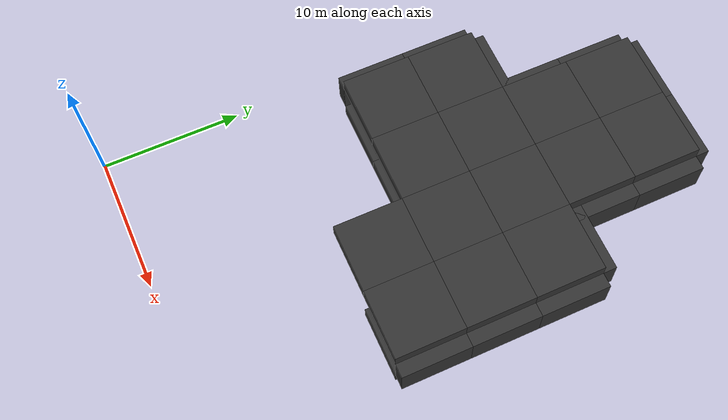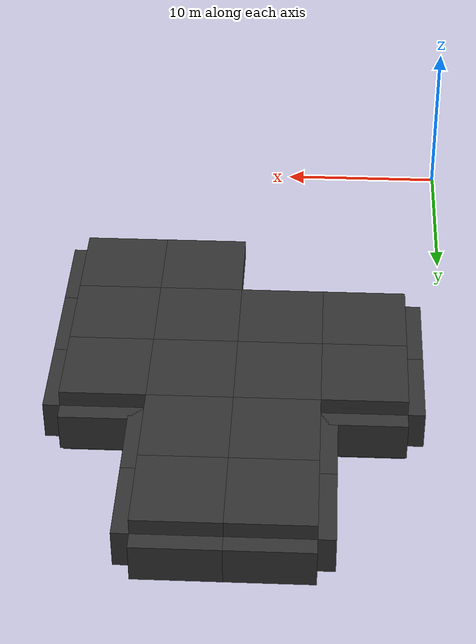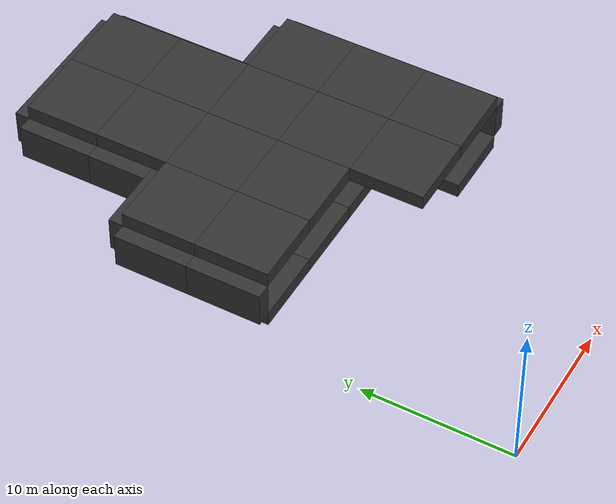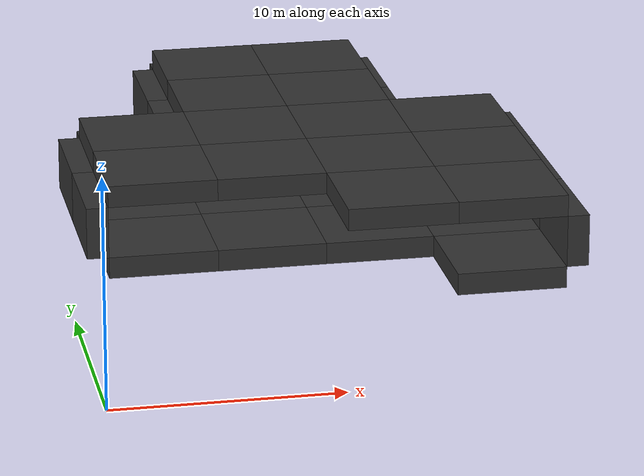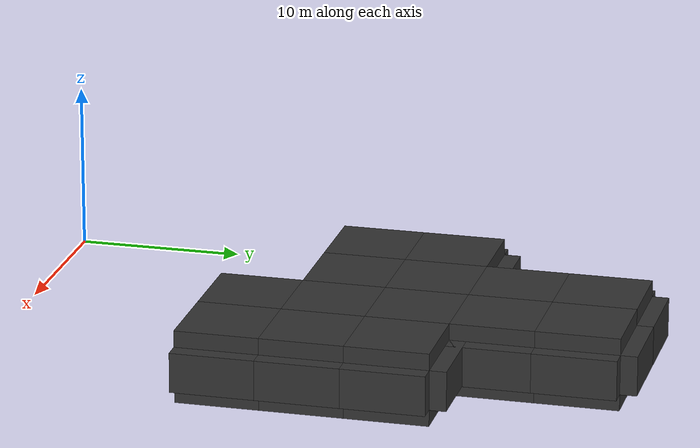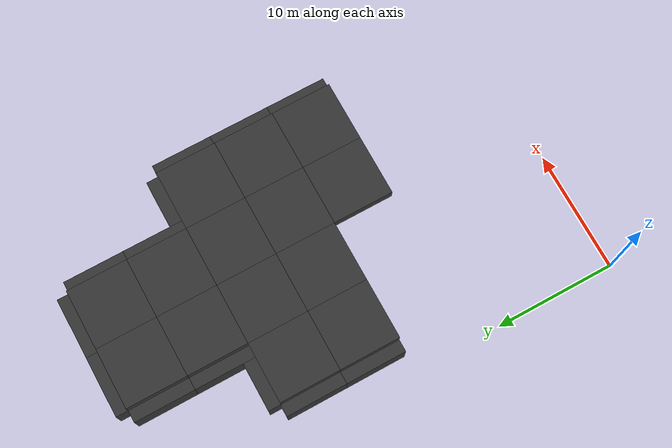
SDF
<sdf version="1.7">
 <world name="RG1">
  <model name="floor_8">
   <static>true</static>
   <pose>5.0 20.0 -0.5 0.0 0.0 0.0</pose>
   <link name="floor_8-base-link">
    <visual name="floor_8-visual">
     <geometry><box><size>5 5 1.0</size></box></geometry>
     <material><diffuse>0.2 0.2 0.2 1</diffuse><specular>0.1 0.1 0.1 1</specular></material>
    </visual>
    <collision name="floor_8-collision"><geometry><box><size>5 5 1.0</size></box></geometry></collision>
   </link>
  </model>
  <model name="ceiling_8">
   <static>true</static>
   <pose>5.0 20.0 2.9 0.0 0.0 0.0</pose>
   <link name="ceiling_8-base-link">
    <visual name="ceiling_8-visual">
     <geometry><box><size>5 5 1.0</size></box></geometry>
     <material><diffuse>0.2 0.2 0.2 1</diffuse><specular>0.1 0.1 0.1 1</specular></material>
    </visual>
    <collision name="ceiling_8-collision"><geometry><box><size>5 5 1.0</size></box></geometry></collision>
    <light type="point" name="ceiling_8-light">
     <pose>0 0 -1 0 0 0</pose>
     <cast_shadows>false</cast_shadows>
     <diffuse>0.8 0.8 0.8 1</diffuse>
     <attenuation>
      <range>10</range>
      <constant>0.8</constant>
      <linear>0.05</linear>
      <quadratic>0.01</quadratic>
     </attenuation>
    </light>
   </link>
  </model>
  <model name="wall_8">
   <static>true</static>
   <pose>2.0 20.0 1.2 0.0 0.0 1.570796326795</pose>
   <link name="wall_8-base-link">
    <visual name="wall_8-visual">
     <geometry><box><size>5 1 2.4</size></box></geometry>
     <material><diffuse>0.2 0.2 0.2 1</diffuse><specular>0.1 0.1 0.1 1</specular></material>
    </visual>
    <collision name="wall_8-collision"><geometry><box><size>5 1 2.4</size></box></geometry></collision>
   </link>
  </model>
  <model name="floor_9">
   <static>true</static>
   <pose>5.0 25.0 -0.5 0.0 0.0 0.0</pose>
   <link name="floor_9-base-link">
    <visual name="floor_9-visual">
     <geometry><box><size>5 5 1.0</size></box></geometry>
     <material><diffuse>0.2 0.2 0.2 1</diffuse><specular>0.1 0.1 0.1 1</specular></material>
    </visual>
    <collision name="floor_9-collision"><geometry><box><size>5 5 1.0</size></box></geometry></collision>
   </link>
  </model>
  <model name="ceiling_9">
   <static>true</static>
   <pose>5.0 25.0 2.9 0.0 0.0 0.0</pose>
   <link name="ceiling_9-base-link">
    <visual name="ceiling_9-visual">
     <geometry><box><size>5 5 1.0</size></box></geometry>
     <material><diffuse>0.2 0.2 0.2 1</diffuse><specular>0.1 0.1 0.1 1</specular></material>
    </visual>
    <collision name="ceiling_9-collision"><geometry><box><size>5 5 1.0</size></box></geometry></collision>
    <light type="point" name="ceiling_9-light">
     <pose>0 0 -1 0 0 0</pose>
     <cast_shadows>false</cast_shadows>
     <diffuse>0.8 0.8 0.8 1</diffuse>
     <attenuation>
      <range>10</range>
      <constant>0.8</constant>
      <linear>0.05</linear>
      <quadratic>0.01</quadratic>
     </attenuation>
    </light>
   </link>
  </model>
  <model name="wall_9">
   <static>true</static>
   <pose>2.0 25.0 1.2 0.0 0.0 1.570796326795</pose>
   <link name="wall_9-base-link">
    <visual name="wall_9-visual">
     <geometry><box><size>5 1 2.4</size></box></geometry>
     <material><diffuse>0.2 0.2 0.2 1</diffuse><specular>0.1 0.1 0.1 1</specular></material>
    </visual>
    <collision name="wall_9-collision"><geometry><box><size>5 1 2.4</size></box></geometry></collision>
   </link>
  </model>
  <model name="wall_10">
   <static>true</static>
   <pose>5.0 28.0 1.2 0.0 0.0 0.0</pose>
   <link name="wall_10-base-link">
    <visual name="wall_10-visual">
     <geometry><box><size>5 1 2.4</size></box></geometry>
     <material><diffuse>0.2 0.2 0.2 1</diffuse><specular>0.1 0.1 0.1 1</specular></material>
    </visual>
    <collision name="wall_10-collision"><geometry><box><size>5 1 2.4</size></box></geometry></collision>
   </link>
  </model>
  <model name="floor_14">
   <static>true</static>
   <pose>10.0 20.0 -0.5 0.0 0.0 0.0</pose>
   <link name="floor_14-base-link">
    <visual name="floor_14-visual">
     <geometry><box><size>5 5 1.0</size></box></geometry>
     <material><diffuse>0.2 0.2 0.2 1</diffuse><specular>0.1 0.1 0.1 1</specular></material>
    </visual>
    <collision name="floor_14-collision"><geometry><box><size>5 5 1.0</size></box></geometry></collision>
   </link>
  </model>
  <model name="ceiling_14">
   <static>true</static>
   <pose>10.0 20.0 2.9 0.0 0.0 0.0</pose>
   <link name="ceiling_14-base-link">
    <visual name="ceiling_14-visual">
     <geometry><box><size>5 5 1.0</size></box></geometry>
     <material><diffuse>0.2 0.2 0.2 1</diffuse><specular>0.1 0.1 0.1 1</specular></material>
    </visual>
    <collision name="ceiling_14-collision"><geometry><box><size>5 5 1.0</size></box></geometry></collision>
    <light type="point" name="ceiling_14-light">
     <pose>0 0 -1 0 0 0</pose>
     <cast_shadows>false</cast_shadows>
     <diffuse>0.8 0.8 0.8 1</diffuse>
     <attenuation>
      <range>10</range>
      <constant>0.8</constant>
      <linear>0.05</linear>
      <quadratic>0.01</quadratic>
     </attenuation>
    </light>
   </link>
  </model>
  <model name="floor_15">
   <static>true</static>
   <pose>10.0 25.0 -0.5 0.0 0.0 0.0</pose>
   <link name="floor_15-base-link">
    <visual name="floor_15-visual">
     <geometry><box><size>5 5 1.0</size></box></geometry>
     <material><diffuse>0.2 0.2 0.2 1</diffuse><specular>0.1 0.1 0.1 1</specular></material>
    </visual>
    <collision name="floor_15-collision"><geometry><box><size>5 5 1.0</size></box></geometry></collision>
   </link>
  </model>
  <model name="ceiling_15">
   <static>true</static>
   <pose>10.0 25.0 2.9 0.0 0.0 0.0</pose>
   <link name="ceiling_15-base-link">
    <visual name="ceiling_15-visual">
     <geometry><box><size>5 5 1.0</size></box></geometry>
     <material><diffuse>0.2 0.2 0.2 1</diffuse><specular>0.1 0.1 0.1 1</specular></material>
    </visual>
    <collision name="ceiling_15-collision"><geometry><box><size>5 5 1.0</size></box></geometry></collision>
    <light type="point" name="ceiling_15-light">
     <pose>0 0 -1 0 0 0</pose>
     <cast_shadows>false</cast_shadows>
     <diffuse>0.8 0.8 0.8 1</diffuse>
     <attenuation>
      <range>10</range>
      <constant>0.8</constant>
      <linear>0.05</linear>
      <quadratic>0.01</quadratic>
     </attenuation>
    </light>
   </link>
  </model>
  <model name="floor_16">
   <static>true</static>
   <pose>10.0 30.0 -0.5 0.0 0.0 0.0</pose>
   <link name="floor_16-base-link">
    <visual name="floor_16-visual">
     <geometry><box><size>5 5 1.0</size></box></geometry>
     <material><diffuse>0.2 0.2 0.2 1</diffuse><specular>0.1 0.1 0.1 1</specular></material>
    </visual>
    <collision name="floor_16-collision"><geometry><box><size>5 5 1.0</size></box></geometry></collision>
   </link>
  </model>
  <model name="ceiling_16">
   <static>true</static>
   <pose>10.0 30.0 2.9 0.0 0.0 0.0</pose>
   <link name="ceiling_16-base-link">
    <visual name="ceiling_16-visual">
     <geometry><box><size>5 5 1.0</size></box></geometry>
     <material><diffuse>0.2 0.2 0.2 1</diffuse><specular>0.1 0.1 0.1 1</specular></material>
    </visual>
    <collision name="ceiling_16-collision"><geometry><box><size>5 5 1.0</size></box></geometry></collision>
    <light type="point" name="ceiling_16-light">
     <pose>0 0 -1 0 0 0</pose>
     <cast_shadows>false</cast_shadows>
     <diffuse>0.8 0.8 0.8 1</diffuse>
     <attenuation>
      <range>10</range>
      <constant>0.8</constant>
      <linear>0.05</linear>
      <quadratic>0.01</quadratic>
     </attenuation>
    </light>
   </link>
  </model>
  <model name="wall_14">
   <static>true</static>
   <pose>7.0 30.0 1.2 0.0 0.0 1.570796326795</pose>
   <link name="wall_14-base-link">
    <visual name="wall_14-visual">
     <geometry><box><size>5 1 2.4</size></box></geometry>
     <material><diffuse>0.2 0.2 0.2 1</diffuse><specular>0.1 0.1 0.1 1</specular></material>
    </visual>
    <collision name="wall_14-collision"><geometry><box><size>5 1 2.4</size></box></geometry></collision>
   </link>
  </model>
  <model name="floor_17">
   <static>true</static>
   <pose>10.0 35.0 -0.5 0.0 0.0 0.0</pose>
   <link name="floor_17-base-link">
    <visual name="floor_17-visual">
     <geometry><box><size>5 5 1.0</size></box></geometry>
     <material><diffuse>0.2 0.2 0.2 1</diffuse><specular>0.1 0.1 0.1 1</specular></material>
    </visual>
    <collision name="floor_17-collision"><geometry><box><size>5 5 1.0</size></box></geometry></collision>
   </link>
  </model>
  <model name="ceiling_17">
   <static>true</static>
   <pose>10.0 35.0 2.9 0.0 0.0 0.0</pose>
   <link name="ceiling_17-base-link">
    <visual name="ceiling_17-visual">
     <geometry><box><size>5 5 1.0</size></box></geometry>
     <material><diffuse>0.2 0.2 0.2 1</diffuse><specular>0.1 0.1 0.1 1</specular></material>
    </visual>
    <collision name="ceiling_17-collision"><geometry><box><size>5 5 1.0</size></box></geometry></collision>
    <light type="point" name="ceiling_17-light">
     <pose>0 0 -1 0 0 0</pose>
     <cast_shadows>false</cast_shadows>
     <diffuse>0.8 0.8 0.8 1</diffuse>
     <attenuation>
      <range>10</range>
      <constant>0.8</constant>
      <linear>0.05</linear>
      <quadratic>0.01</quadratic>
     </attenuation>
    </light>
   </link>
  </model>
  <model name="wall_15">
   <static>true</static>
   <pose>7.0 35.0 1.2 0.0 0.0 1.570796326795</pose>
   <link name="wall_15-base-link">
    <visual name="wall_15-visual">
     <geometry><box><size>5 1 2.4</size></box></geometry>
     <material><diffuse>0.2 0.2 0.2 1</diffuse><specular>0.1 0.1 0.1 1</specular></material>
    </visual>
    <collision name="wall_15-collision"><geometry><box><size>5 1 2.4</size></box></geometry></collision>
   </link>
  </model>
  <model name="wall_16">
   <static>true</static>
   <pose>10.0 38.0 1.2 0.0 0.0 0.0</pose>
   <link name="wall_16-base-link">
    <visual name="wall_16-visual">
     <geometry><box><size>5 1 2.4</size></box></geometry>
     <material><diffuse>0.2 0.2 0.2 1</diffuse><specular>0.1 0.1 0.1 1</specular></material>
    </visual>
    <collision name="wall_16-collision"><geometry><box><size>5 1 2.4</size></box></geometry></collision>
   </link>
  </model>
  <model name="ceiling_19">
   <static>true</static>
   <pose>15.0 15.0 2.9 0.0 0.0 0.0</pose>
   <link name="ceiling_19-base-link">
    <visual name="ceiling_19-visual">
     <geometry><box><size>5 5 1.0</size></box></geometry>
     <material><diffuse>0.2 0.2 0.2 1</diffuse><specular>0.1 0.1 0.1 1</specular></material>
    </visual>
    <collision name="ceiling_19-collision"><geometry><box><size>5 5 1.0</size></box></geometry></collision>
    <light type="point" name="ceiling_19-light">
     <pose>0 0 -1 0 0 0</pose>
     <cast_shadows>false</cast_shadows>
     <diffuse>0.8 0.8 0.8 1</diffuse>
     <attenuation>
      <range>10</range>
      <constant>0.8</constant>
      <linear>0.05</linear>
      <quadratic>0.01</quadratic>
     </attenuation>
    </light>
   </link>
  </model>
  <model name="floor_20">
   <static>true</static>
   <pose>15.0 20.0 -0.5 0.0 0.0 0.0</pose>
   <link name="floor_20-base-link">
    <visual name="floor_20-visual">
     <geometry><box><size>5 5 1.0</size></box></geometry>
     <material><diffuse>0.2 0.2 0.2 1</diffuse><specular>0.1 0.1 0.1 1</specular></material>
    </visual>
    <collision name="floor_20-collision"><geometry><box><size>5 5 1.0</size></box></geometry></collision>
   </link>
  </model>
  <model name="ceiling_20">
   <static>true</static>
   <pose>15.0 20.0 2.9 0.0 0.0 0.0</pose>
   <link name="ceiling_20-base-link">
    <visual name="ceiling_20-visual">
     <geometry><box><size>5 5 1.0</size></box></geometry>
     <material><diffuse>0.2 0.2 0.2 1</diffuse><specular>0.1 0.1 0.1 1</specular></material>
    </visual>
    <collision name="ceiling_20-collision"><geometry><box><size>5 5 1.0</size></box></geometry></collision>
    <light type="point" name="ceiling_20-light">
     <pose>0 0 -1 0 0 0</pose>
     <cast_shadows>false</cast_shadows>
     <diffuse>0.8 0.8 0.8 1</diffuse>
     <attenuation>
      <range>10</range>
      <constant>0.8</constant>
      <linear>0.05</linear>
      <quadratic>0.01</quadratic>
     </attenuation>
    </light>
   </link>
  </model>
  <model name="floor_21">
   <static>true</static>
   <pose>15.0 25.0 -0.5 0.0 0.0 0.0</pose>
   <link name="floor_21-base-link">
    <visual name="floor_21-visual">
     <geometry><box><size>5 5 1.0</size></box></geometry>
     <material><diffuse>0.2 0.2 0.2 1</diffuse><specular>0.1 0.1 0.1 1</specular></material>
    </visual>
    <collision name="floor_21-collision"><geometry><box><size>5 5 1.0</size></box></geometry></collision>
   </link>
  </model>
  <model name="ceiling_21">
   <static>true</static>
   <pose>15.0 25.0 2.9 0.0 0.0 0.0</pose>
   <link name="ceiling_21-base-link">
    <visual name="ceiling_21-visual">
     <geometry><box><size>5 5 1.0</size></box></geometry>
     <material><diffuse>0.2 0.2 0.2 1</diffuse><specular>0.1 0.1 0.1 1</specular></material>
    </visual>
    <collision name="ceiling_21-collision"><geometry><box><size>5 5 1.0</size></box></geometry></collision>
    <light type="point" name="ceiling_21-light">
     <pose>0 0 -1 0 0 0</pose>
     <cast_shadows>false</cast_shadows>
     <diffuse>0.8 0.8 0.8 1</diffuse>
     <attenuation>
      <range>10</range>
      <constant>0.8</constant>
      <linear>0.05</linear>
      <quadratic>0.01</quadratic>
     </attenuation>
    </light>
   </link>
  </model>
  <model name="floor_22">
   <static>true</static>
   <pose>15.0 30.0 -0.5 0.0 0.0 0.0</pose>
   <link name="floor_22-base-link">
    <visual name="floor_22-visual">
     <geometry><box><size>5 5 1.0</size></box></geometry>
     <material><diffuse>0.2 0.2 0.2 1</diffuse><specular>0.1 0.1 0.1 1</specular></material>
    </visual>
    <collision name="floor_22-collision"><geometry><box><size>5 5 1.0</size></box></geometry></collision>
   </link>
  </model>
  <model name="ceiling_22">
   <static>true</static>
   <pose>15.0 30.0 2.9 0.0 0.0 0.0</pose>
   <link name="ceiling_22-base-link">
    <visual name="ceiling_22-visual">
     <geometry><box><size>5 5 1.0</size></box></geometry>
     <material><diffuse>0.2 0.2 0.2 1</diffuse><specular>0.1 0.1 0.1 1</specular></material>
    </visual>
    <collision name="ceiling_22-collision"><geometry><box><size>5 5 1.0</size></box></geometry></collision>
    <light type="point" name="ceiling_22-light">
     <pose>0 0 -1 0 0 0</pose>
     <cast_shadows>false</cast_shadows>
     <diffuse>0.8 0.8 0.8 1</diffuse>
     <attenuation>
      <range>10</range>
      <constant>0.8</constant>
      <linear>0.05</linear>
      <quadratic>0.01</quadratic>
     </attenuation>
    </light>
   </link>
  </model>
  <model name="wall_18">
   <static>true</static>
   <pose>18.0 30.0 1.2 0.0 0.0 1.570796326795</pose>
   <link name="wall_18-base-link">
    <visual name="wall_18-visual">
     <geometry><box><size>5 1 2.4</size></box></geometry>
     <material><diffuse>0.2 0.2 0.2 1</diffuse><specular>0.1 0.1 0.1 1</specular></material>
    </visual>
    <collision name="wall_18-collision"><geometry><box><size>5 1 2.4</size></box></geometry></collision>
   </link>
  </model>
  <model name="floor_23">
   <static>true</static>
   <pose>15.0 35.0 -0.5 0.0 0.0 0.0</pose>
   <link name="floor_23-base-link">
    <visual name="floor_23-visual">
     <geometry><box><size>5 5 1.0</size></box></geometry>
     <material><diffuse>0.2 0.2 0.2 1</diffuse><specular>0.1 0.1 0.1 1</specular></material>
    </visual>
    <collision name="floor_23-collision"><geometry><box><size>5 5 1.0</size></box></geometry></collision>
   </link>
  </model>
  <model name="ceiling_23">
   <static>true</static>
   <pose>15.0 35.0 2.9 0.0 0.0 0.0</pose>
   <link name="ceiling_23-base-link">
    <visual name="ceiling_23-visual">
     <geometry><box><size>5 5 1.0</size></box></geometry>
     <material><diffuse>0.2 0.2 0.2 1</diffuse><specular>0.1 0.1 0.1 1</specular></material>
    </visual>
    <collision name="ceiling_23-collision"><geometry><box><size>5 5 1.0</size></box></geometry></collision>
    <light type="point" name="ceiling_23-light">
     <pose>0 0 -1 0 0 0</pose>
     <cast_shadows>false</cast_shadows>
     <diffuse>0.8 0.8 0.8 1</diffuse>
     <attenuation>
      <range>10</range>
      <constant>0.8</constant>
      <linear>0.05</linear>
      <quadratic>0.01</quadratic>
     </attenuation>
    </light>
   </link>
  </model>
  <model name="wall_19">
   <static>true</static>
   <pose>18.0 35.0 1.2 0.0 0.0 1.570796326795</pose>
   <link name="wall_19-base-link">
    <visual name="wall_19-visual">
     <geometry><box><size>5 1 2.4</size></box></geometry>
     <material><diffuse>0.2 0.2 0.2 1</diffuse><specular>0.1 0.1 0.1 1</specular></material>
    </visual>
    <collision name="wall_19-collision"><geometry><box><size>5 1 2.4</size></box></geometry></collision>
   </link>
  </model>
  <model name="wall_20">
   <static>true</static>
   <pose>15.0 38.0 1.2 0.0 0.0 0.0</pose>
   <link name="wall_20-base-link">
    <visual name="wall_20-visual">
     <geometry><box><size>5 1 2.4</size></box></geometry>
     <material><diffuse>0.2 0.2 0.2 1</diffuse><specular>0.1 0.1 0.1 1</specular></material>
    </visual>
    <collision name="wall_20-collision"><geometry><box><size>5 1 2.4</size></box></geometry></collision>
   </link>
  </model>
  <model name="floor_25">
   <static>true</static>
   <pose>20.0 15.0 -0.5 0.0 0.0 0.0</pose>
   <link name="floor_25-base-link">
    <visual name="floor_25-visual">
     <geometry><box><size>5 5 1.0</size></box></geometry>
     <material><diffuse>0.2 0.2 0.2 1</diffuse><specular>0.1 0.1 0.1 1</specular></material>
    </visual>
    <collision name="floor_25-collision"><geometry><box><size>5 5 1.0</size></box></geometry></collision>
   </link>
  </model>
  <model name="ceiling_25">
   <static>true</static>
   <pose>20.0 15.0 2.9 0.0 0.0 0.0</pose>
   <link name="ceiling_25-base-link">
    <visual name="ceiling_25-visual">
     <geometry><box><size>5 5 1.0</size></box></geometry>
     <material><diffuse>0.2 0.2 0.2 1</diffuse><specular>0.1 0.1 0.1 1</specular></material>
    </visual>
    <collision name="ceiling_25-collision"><geometry><box><size>5 5 1.0</size></box></geometry></collision>
    <light type="point" name="ceiling_25-light">
     <pose>0 0 -1 0 0 0</pose>
     <cast_shadows>false</cast_shadows>
     <diffuse>0.8 0.8 0.8 1</diffuse>
     <attenuation>
      <range>10</range>
      <constant>0.8</constant>
      <linear>0.05</linear>
      <quadratic>0.01</quadratic>
     </attenuation>
    </light>
   </link>
  </model>
  <model name="wall_23">
   <static>true</static>
   <pose>23.0 15.0 1.2 0.0 0.0 1.570796326795</pose>
   <link name="wall_23-base-link">
    <visual name="wall_23-visual">
     <geometry><box><size>5 1 2.4</size></box></geometry>
     <material><diffuse>0.2 0.2 0.2 1</diffuse><specular>0.1 0.1 0.1 1</specular></material>
    </visual>
    <collision name="wall_23-collision"><geometry><box><size>5 1 2.4</size></box></geometry></collision>
   </link>
  </model>
  <model name="floor_26">
   <static>true</static>
   <pose>20.0 20.0 -0.5 0.0 0.0 0.0</pose>
   <link name="floor_26-base-link">
    <visual name="floor_26-visual">
     <geometry><box><size>5 5 1.0</size></box></geometry>
     <material><diffuse>0.2 0.2 0.2 1</diffuse><specular>0.1 0.1 0.1 1</specular></material>
    </visual>
    <collision name="floor_26-collision"><geometry><box><size>5 5 1.0</size></box></geometry></collision>
   </link>
  </model>
  <model name="ceiling_26">
   <static>true</static>
   <pose>20.0 20.0 2.9 0.0 0.0 0.0</pose>
   <link name="ceiling_26-base-link">
    <visual name="ceiling_26-visual">
     <geometry><box><size>5 5 1.0</size></box></geometry>
     <material><diffuse>0.2 0.2 0.2 1</diffuse><specular>0.1 0.1 0.1 1</specular></material>
    </visual>
    <collision name="ceiling_26-collision"><geometry><box><size>5 5 1.0</size></box></geometry></collision>
    <light type="point" name="ceiling_26-light">
     <pose>0 0 -1 0 0 0</pose>
     <cast_shadows>false</cast_shadows>
     <diffuse>0.8 0.8 0.8 1</diffuse>
     <attenuation>
      <range>10</range>
      <constant>0.8</constant>
      <linear>0.05</linear>
      <quadratic>0.01</quadratic>
     </attenuation>
    </light>
   </link>
  </model>
  <model name="wall_24">
   <static>true</static>
   <pose>23.0 20.0 1.2 0.0 0.0 1.570796326795</pose>
   <link name="wall_24-base-link">
    <visual name="wall_24-visual">
     <geometry><box><size>5 1 2.4</size></box></geometry>
     <material><diffuse>0.2 0.2 0.2 1</diffuse><specular>0.1 0.1 0.1 1</specular></material>
    </visual>
    <collision name="wall_24-collision"><geometry><box><size>5 1 2.4</size></box></geometry></collision>
   </link>
  </model>
  <model name="floor_27">
   <static>true</static>
   <pose>20.0 25.0 -0.5 0.0 0.0 0.0</pose>
   <link name="floor_27-base-link">
    <visual name="floor_27-visual">
     <geometry><box><size>5 5 1.0</size></box></geometry>
     <material><diffuse>0.2 0.2 0.2 1</diffuse><specular>0.1 0.1 0.1 1</specular></material>
    </visual>
    <collision name="floor_27-collision"><geometry><box><size>5 5 1.0</size></box></geometry></collision>
   </link>
  </model>
  <model name="ceiling_27">
   <static>true</static>
   <pose>20.0 25.0 2.9 0.0 0.0 0.0</pose>
   <link name="ceiling_27-base-link">
    <visual name="ceiling_27-visual">
     <geometry><box><size>5 5 1.0</size></box></geometry>
     <material><diffuse>0.2 0.2 0.2 1</diffuse><specular>0.1 0.1 0.1 1</specular></material>
    </visual>
    <collision name="ceiling_27-collision"><geometry><box><size>5 5 1.0</size></box></geometry></collision>
    <light type="point" name="ceiling_27-light">
     <pose>0 0 -1 0 0 0</pose>
     <cast_shadows>false</cast_shadows>
     <diffuse>0.8 0.8 0.8 1</diffuse>
     <attenuation>
      <range>10</range>
      <constant>0.8</constant>
      <linear>0.05</linear>
      <quadratic>0.01</quadratic>
     </attenuation>
    </light>
   </link>
  </model>
  <model name="wall_25">
   <static>true</static>
   <pose>23.0 25.0 1.2 0.0 0.0 1.570796326795</pose>
   <link name="wall_25-base-link">
    <visual name="wall_25-visual">
     <geometry><box><size>5 1 2.4</size></box></geometry>
     <material><diffuse>0.2 0.2 0.2 1</diffuse><specular>0.1 0.1 0.1 1</specular></material>
    </visual>
    <collision name="wall_25-collision"><geometry><box><size>5 1 2.4</size></box></geometry></collision>
   </link>
  </model>
  <model name="wall_26">
   <static>true</static>
   <pose>20.0 28.0 1.2 0.0 0.0 0.0</pose>
   <link name="wall_26-base-link">
    <visual name="wall_26-visual">
     <geometry><box><size>5 1 2.4</size></box></geometry>
     <material><diffuse>0.2 0.2 0.2 1</diffuse><specular>0.1 0.1 0.1 1</specular></material>
    </visual>
    <collision name="wall_26-collision"><geometry><box><size>5 1 2.4</size></box></geometry></collision>
   </link>
  </model>
 </world>
</sdf>
